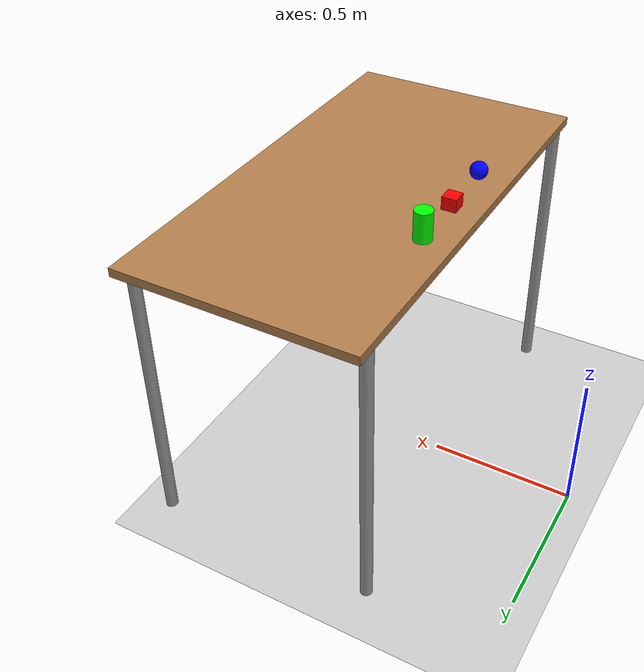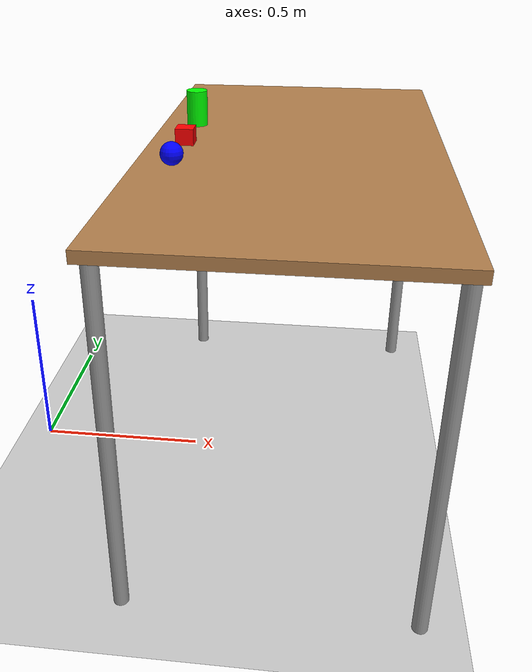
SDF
<sdf version="1.6">
 <world name="default">
  <light name="sun" type="directional">
   <pose>0 0 10 0 -0 0</pose>
   <diffuse>0.8 0.8 0.8 1</diffuse>
   <specular>0.1 0.1 0.1 1</specular>
   <attenuation>
    <range>1000</range>
    <constant>0.9</constant>
    <linear>0.01</linear>
    <quadratic>0.001</quadratic>
   </attenuation>
   <direction>-0.5 0.5 -1</direction>
  </light>
  <model name="ground_plane">
   <static>1</static>
   <link name="link">
    <collision name="collision">
     <geometry><plane><normal>0 0 1</normal><size>100 100</size></plane></geometry>
     <surface>
      <contact><collide_bitmask>65535</collide_bitmask></contact>
      <friction><ode><mu>1e+06</mu><mu2>50000</mu2></ode></friction>
     </surface>
    </collision>
    <visual name="visual">
     <cast_shadows>0</cast_shadows>
     <geometry><plane><normal>0 0 1</normal><size>100 100</size></plane></geometry>
     <material>
      <script><uri>file://media/materials/scripts/gazebo.material</uri><name>Gazebo/Grey</name></script>
     </material>
    </visual>
   </link>
  </model>
  <gravity>0 0 -9.8</gravity>
  <magnetic_field>6e-06 2.3e-05 -4.2e-05</magnetic_field>
  <atmosphere type="adiabatic"/>
  <physics name="default_physics" default="0" type="ode">
   <max_step_size>0.001</max_step_size>
   <real_time_factor>1</real_time_factor>
   <real_time_update_rate>1000</real_time_update_rate>
  </physics>
  <scene><ambient>0.4 0.4 0.4 1</ambient><background>0.7 0.7 0.7 1</background><shadows>1</shadows></scene>
  <spherical_coordinates>
   <surface_model>EARTH_WGS84</surface_model>
   <latitude_deg>0</latitude_deg>
   <longitude_deg>0</longitude_deg>
   <elevation>0</elevation>
   <heading_deg>0</heading_deg>
  </spherical_coordinates>
  <model name="sphere">
   <link name="link_3">
    <inertial>
     <mass>1</mass>
     <inertia><ixx>0.1</ixx><ixy>0</ixy><ixz>0</ixz><iyy>0.1</iyy><iyz>0</iyz><izz>0.1</izz></inertia>
    </inertial>
    <visual name="visual">
     <geometry><sphere><radius>0.03</radius></sphere></geometry>
     <material>
      <lighting>1</lighting>
      <script><uri>file://media/materials/scripts/gazebo.material</uri><name>Gazebo/Grey</name></script>
      <shader type="pixel"><normal_map>__default__</normal_map></shader>
      <ambient>0 0 1 0</ambient>
      <diffuse>0.7 0.7 0.7 1</diffuse>
      <specular>0.01 0.01 0.01 1</specular>
      <emissive>0 0 0 1</emissive>
     </material>
    </visual>
    <collision name="collision">
     <geometry><sphere><radius>0.03</radius></sphere></geometry>
     <surface>
      <friction>
       <ode><mu>1</mu><mu2>1</mu2><fdir1>0 0 0</fdir1><slip1>0</slip1><slip2>0</slip2></ode>
       <torsional>
        <coefficient>1</coefficient>
        <patch_radius>0</patch_radius>
        <surface_radius>0</surface_radius>
        <use_patch_radius>1</use_patch_radius>
        <ode><slip>0</slip></ode>
       </torsional>
      </friction>
      <bounce><restitution_coefficient>0</restitution_coefficient><threshold>1e+06</threshold></bounce>
      <contact>
       <collide_without_contact>0</collide_without_contact>
       <collide_without_contact_bitmask>1</collide_without_contact_bitmask>
       <collide_bitmask>1</collide_bitmask>
       <ode>
        <soft_cfm>0</soft_cfm>
        <soft_erp>0.2</soft_erp>
        <kp>1e+13</kp>
        <kd>1</kd>
        <max_vel>0.01</max_vel>
        <min_depth>0</min_depth>
       </ode>
       <bullet>
        <split_impulse>1</split_impulse>
        <split_impulse_penetration_threshold>-0.01</split_impulse_penetration_threshold>
        <soft_cfm>0</soft_cfm>
        <soft_erp>0.2</soft_erp>
        <kp>1e+13</kp>
        <kd>1</kd>
       </bullet>
      </contact>
     </surface>
    </collision>
   </link>
   <static>0</static>
   <pose>0.5 -0.2 1.045 0 -0 0</pose>
  </model>
  <model name="cylinder">
   <link name="link_2">
    <inertial>
     <mass>1</mass>
     <inertia><ixx>0.145833</ixx><ixy>0</ixy><ixz>0</ixz><iyy>0.145833</iyy><iyz>0</iyz><izz>0.125</izz></inertia>
    </inertial>
    <pose>0 0 0.1 0 -0 0</pose>
    <visual name="visual">
     <geometry><cylinder><radius>0.03</radius><length>0.1</length></cylinder></geometry>
     <material>
      <lighting>1</lighting>
      <script><uri>file://media/materials/scripts/gazebo.material</uri><name>Gazebo/Grey</name></script>
      <shader type="pixel"><normal_map>__default__</normal_map></shader>
      <ambient>0 1 0 1</ambient>
      <diffuse>0.7 0.7 0.7 1</diffuse>
      <specular>0.01 0.01 0.01 1</specular>
      <emissive>0 0 0 1</emissive>
     </material>
    </visual>
    <collision name="collision">
     <geometry><cylinder><radius>0.03</radius><length>0.1</length></cylinder></geometry>
     <surface>
      <friction>
       <ode><mu>1</mu><mu2>1</mu2><fdir1>0 0 0</fdir1><slip1>0</slip1><slip2>0</slip2></ode>
       <torsional>
        <coefficient>1</coefficient>
        <patch_radius>0</patch_radius>
        <surface_radius>0</surface_radius>
        <use_patch_radius>1</use_patch_radius>
        <ode><slip>0</slip></ode>
       </torsional>
      </friction>
      <bounce><restitution_coefficient>0</restitution_coefficient><threshold>1e+06</threshold></bounce>
      <contact>
       <collide_without_contact>0</collide_without_contact>
       <collide_without_contact_bitmask>1</collide_without_contact_bitmask>
       <collide_bitmask>1</collide_bitmask>
       <ode>
        <soft_cfm>0</soft_cfm>
        <soft_erp>0.2</soft_erp>
        <kp>1e+13</kp>
        <kd>1</kd>
        <max_vel>0.01</max_vel>
        <min_depth>0</min_depth>
       </ode>
       <bullet>
        <split_impulse>1</split_impulse>
        <split_impulse_penetration_threshold>-0.01</split_impulse_penetration_threshold>
        <soft_cfm>0</soft_cfm>
        <soft_erp>0.2</soft_erp>
        <kp>1e+13</kp>
        <kd>1</kd>
       </bullet>
      </contact>
     </surface>
    </collision>
   </link>
   <static>0</static>
   <pose>0.499997 0.199993 0.965 -0.000147 6.2e-05 -5e-06</pose>
  </model>
  <model name="table">
   <static>1</static>
   <link name="link">
    <collision name="surface">
     <pose>0 0 1 0 -0 0</pose>
     <geometry><box><size>1.5 0.8 0.03</size></box></geometry>
     <surface><friction><ode><mu>0.6</mu><mu2>0.6</mu2></ode></friction></surface>
    </collision>
    <visual name="visual1">
     <pose>0 0 1 0 -0 0</pose>
     <geometry><box><size>1.5 0.8 0.03</size></box></geometry>
     <material>
      <script><uri>file://media/materials/scripts/gazebo.material</uri><name>Gazebo/Wood</name></script>
     </material>
    </visual>
    <collision name="front_left_leg">
     <pose>0.68 0.38 0.5 0 -0 0</pose>
     <geometry><cylinder><radius>0.02</radius><length>1</length></cylinder></geometry>
    </collision>
    <visual name="front_left_leg">
     <pose>0.68 0.38 0.5 0 -0 0</pose>
     <geometry><cylinder><radius>0.02</radius><length>1</length></cylinder></geometry>
     <material>
      <script><uri>file://media/materials/scripts/gazebo.material</uri><name>Gazebo/Grey</name></script>
     </material>
    </visual>
    <collision name="front_right_leg">
     <pose>0.68 -0.38 0.5 0 -0 0</pose>
     <geometry><cylinder><radius>0.02</radius><length>1</length></cylinder></geometry>
    </collision>
    <visual name="front_right_leg">
     <pose>0.68 -0.38 0.5 0 -0 0</pose>
     <geometry><cylinder><radius>0.02</radius><length>1</length></cylinder></geometry>
     <material>
      <script><uri>file://media/materials/scripts/gazebo.material</uri><name>Gazebo/Grey</name></script>
     </material>
    </visual>
    <collision name="back_right_leg">
     <pose>-0.68 -0.38 0.5 0 -0 0</pose>
     <geometry><cylinder><radius>0.02</radius><length>1</length></cylinder></geometry>
    </collision>
    <visual name="back_right_leg">
     <pose>-0.68 -0.38 0.5 0 -0 0</pose>
     <geometry><cylinder><radius>0.02</radius><length>1</length></cylinder></geometry>
     <material>
      <script><uri>file://media/materials/scripts/gazebo.material</uri><name>Gazebo/Grey</name></script>
     </material>
    </visual>
    <collision name="back_left_leg">
     <pose>-0.68 0.38 0.5 0 -0 0</pose>
     <geometry><cylinder><radius>0.02</radius><length>1</length></cylinder></geometry>
    </collision>
    <visual name="back_left_leg">
     <pose>-0.68 0.38 0.5 0 -0 0</pose>
     <geometry><cylinder><radius>0.02</radius><length>1</length></cylinder></geometry>
     <material>
      <script><uri>file://media/materials/scripts/gazebo.material</uri><name>Gazebo/Grey</name></script>
     </material>
    </visual>
   </link>
   <pose>0.8 0 0 0 -0 1.57</pose>
  </model>
  <model name="box">
   <link name="link">
    <inertial>
     <mass>1</mass>
     <inertia>
      <ixx>0.166667</ixx>
      <ixy>0</ixy>
      <ixz>0</ixz>
      <iyy>0.166667</iyy>
      <iyz>0</iyz>
      <izz>0.166667</izz>
     </inertia>
    </inertial>
    <pose>0 -0 0.025 0 -0 0</pose>
    <visual name="visual">
     <geometry><box><size>0.05 0.05 0.05</size></box></geometry>
     <material>
      <script><name>Gazebo/Grey</name><uri>file://media/materials/scripts/gazebo.material</uri></script>
      <shader type="pixel"><normal_map>__default__</normal_map></shader>
      <ambient>1 0 0 1</ambient>
      <diffuse>0.7 0.7 0.7 1</diffuse>
      <specular>0.01 0.01 0.01 1</specular>
      <emissive>0 0 0 1</emissive>
     </material>
    </visual>
    <collision name="collision">
     <geometry><box><size>0.05 0.05 0.05</size></box></geometry>
     <surface>
      <friction>
       <ode><mu>1</mu><mu2>1</mu2><fdir1>0 0 0</fdir1><slip1>0</slip1><slip2>0</slip2></ode>
       <torsional>
        <coefficient>1</coefficient>
        <patch_radius>0</patch_radius>
        <surface_radius>0</surface_radius>
        <use_patch_radius>1</use_patch_radius>
        <ode><slip>0</slip></ode>
       </torsional>
      </friction>
      <bounce><restitution_coefficient>0</restitution_coefficient><threshold>1e+06</threshold></bounce>
      <contact>
       <collide_without_contact>0</collide_without_contact>
       <collide_without_contact_bitmask>1</collide_without_contact_bitmask>
       <collide_bitmask>1</collide_bitmask>
       <ode>
        <soft_cfm>0</soft_cfm>
        <soft_erp>0.2</soft_erp>
        <kp>1e+13</kp>
        <kd>1</kd>
        <max_vel>0.01</max_vel>
        <min_depth>0</min_depth>
       </ode>
       <bullet>
        <split_impulse>1</split_impulse>
        <split_impulse_penetration_threshold>-0.01</split_impulse_penetration_threshold>
        <soft_cfm>0</soft_cfm>
        <soft_erp>0.2</soft_erp>
        <kp>1e+13</kp>
        <kd>1</kd>
       </bullet>
      </contact>
     </surface>
    </collision>
   </link>
   <static>0</static>
   <pose>0.5 0 1.01 5.2e-05 -0.000416 4e-06</pose>
  </model>
 </world>
</sdf>
